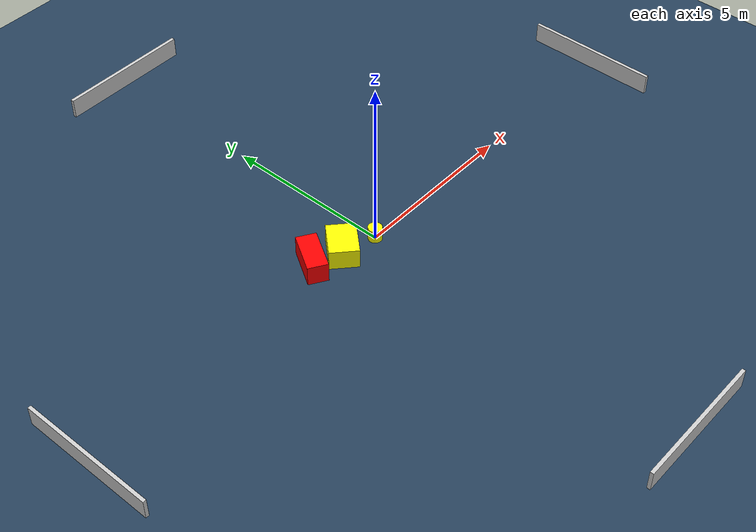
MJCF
<?xml version="1.0" ?>
<mujoco model="generated_environment">
  <option timestep="0.01" integrator="RK4" cone="elliptic"/>
  <default>
    <geom density="1"/>
  </default>
  <asset>
    <texture builtin="gradient" height="3072" name="skybox" rgb1="0.3 0.5 0.7" rgb2="0 0 0" type="skybox" width="512"/>
    <texture builtin="checker" height="300" name="groundplane" rgb1="0.2 0.3 0.4" rgb2="0.1 0.2 0.3" type="2d" width="300"/>
    <material name="groundplane" reflectance="0.2" texrepeat="5 5" texture="groundplane"/>
  </asset>
  <worldbody>
    <light dir="0 0 -1" directional="true" pos="0 0 1.5"/>
    <geom condim="3" friction="0.5 0.005 0.001" material="groundplane" name="floor" pos="0 0 0" size="0 0 0.05" type="plane"/>
    <body name="walls">
      <geom name="wall_1" condim="4" pos="-10.0 0.0 0.3" rgba="0.800000011920929 0.800000011920929 0.800000011920929 1.0" size="0.05 2.0 0.3" type="box"/>
      <geom name="wall_2" condim="4" pos="10.0 0.0 0.3" rgba="0.800000011920929 0.800000011920929 0.800000011920929 1.0" size="0.05 2.0 0.3" type="box"/>
      <geom name="wall_3" condim="4" pos="0.0 -10.0 0.3" rgba="0.800000011920929 0.800000011920929 0.800000011920929 1.0" size="2.0 0.05 0.3" type="box"/>
      <geom name="wall_4" condim="4" pos="0.0 10.0 0.3" rgba="0.800000011920929 0.800000011920929 0.800000011920929 1.0" size="2.0 0.05 0.3" type="box"/>
    </body>
    <body name="robot">
      <joint name="joint_x" type="slide" pos="0 0 0" axis="1 0 0"/>
      <joint name="joint_y" type="slide" pos="0 0 0" axis="0 1 0"/>
      <geom name="robot" type="cylinder" pos="0.0 0.0 0.2" size="0.2 0.2 0.0" mass="5.0" friction="1.0 0.005 0.0001" condim="4" rgba="1.0 1.0 0.0 1.0"/>
    </body>
    <body name="obstacle_1_movable">
      <geom name="obstacle_1_movable" condim="4" pos="-1.0185326745633274 0.25188803417109096 0.3" euler="0 0 227.64166264079148" friction="0.0 0.005 0.001" rgba="1.0 1.0 0.0 1.0" size="0.5259588572221423 0.4136013910255753 0.3" type="box" mass="0.1"/>
      <joint type="free"/>
    </body>
    <body name="obstacle_2_static">
      <geom name="obstacle_2_static" condim="4" pos="-1.8942871708934061 0.5344630495662378 0.3" euler="0 0 58.24502275627515" friction="0.0 0.005 0.001" rgba="1.0 0.0 0.0 1.0" size="0.603038546019055 0.2895893207574858 0.3" type="box"/>
    </body>
  </worldbody>
  <actuator>
    <motor name="actuator_x" joint="joint_x" gear="1" ctrlrange="-1 1"/>
    <motor name="actuator_y" joint="joint_y" gear="1" ctrlrange="-1 1"/>
  </actuator>
</mujoco>
